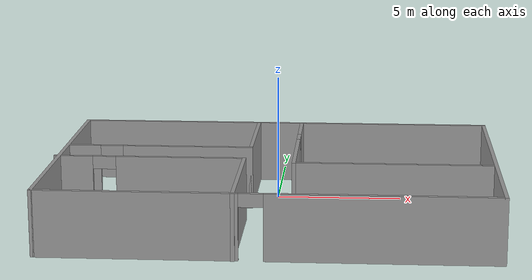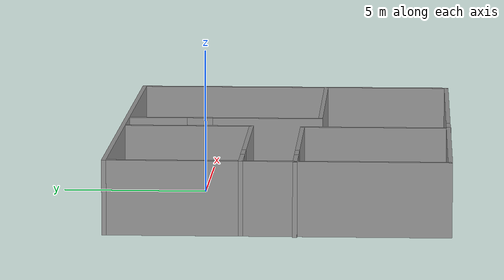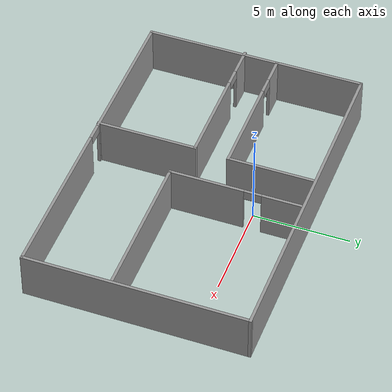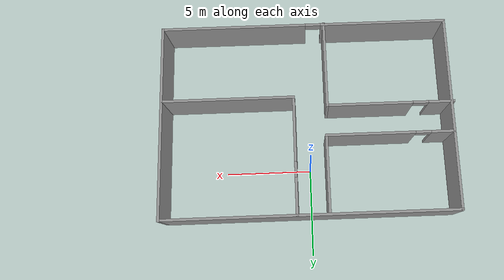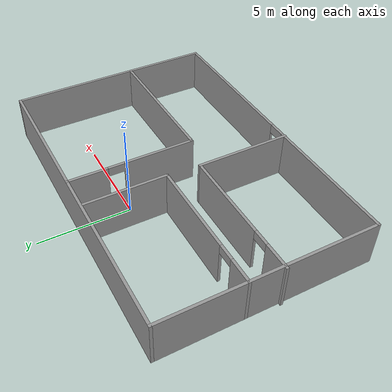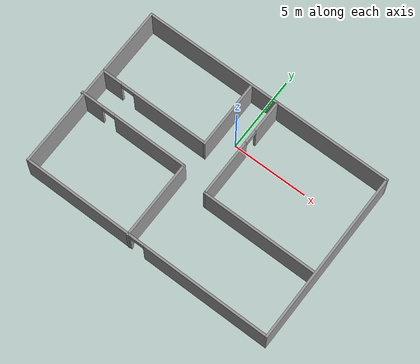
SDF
<?xml version='1.0'?>
<sdf version='1.7'>
  <model name='room'>
    <pose>0.028107 -2.85954 0 0 -0 0</pose>
    <link name='Wall_20'>
      <collision name='Wall_20_Collision'>
        <geometry>
          <box>
            <size>11.5 0.15 2.5</size>
          </box>
        </geometry>
        <pose>0 0 1.25 0 -0 0</pose>
      </collision>
      <visual name='Wall_20_Visual'>
        <pose>0 0 1.25 0 -0 0</pose>
        <geometry>
          <box>
            <size>11.5 0.15 2.5</size>
          </box>
        </geometry>
        <material>
          <script>
            <uri>file://media/materials/scripts/gazebo.material</uri>
            <name>Gazebo/Grey</name>
          </script>
          <ambient>1 1 1 1</ambient>
        </material>
        <meta>
          <layer>0</layer>
        </meta>
      </visual>
      <pose>-8.36347 0.012922 0 0 -0 -1.5708</pose>
    </link>
    <link name='Wall_21'>
      <pose>0.061528 -5.66208 0 0 -0 0</pose>
      <visual name='Wall_21_Visual_0'>
        <pose>-4.74972 0 1.25 0 -0 0</pose>
        <geometry>
          <box>
            <size>7.50057 0.15 2.5</size>
          </box>
        </geometry>
        <material>
          <script>
            <uri>file://media/materials/scripts/gazebo.material</uri>
            <name>Gazebo/Grey</name>
          </script>
          <ambient>1 1 1 1</ambient>
        </material>
        <meta>
          <layer>0</layer>
        </meta>
      </visual>
      <collision name='Wall_21_Collision_0'>
        <geometry>
          <box>
            <size>7.50057 0.15 2.5</size>
          </box>
        </geometry>
        <pose>-4.74972 0 1.25 0 -0 0</pose>
      </collision>
      <visual name='Wall_21_Visual_1'>
        <pose>4.20028 0 1.25 0 -0 0</pose>
        <geometry>
          <box>
            <size>8.59943 0.15 2.5</size>
          </box>
        </geometry>
        <material>
          <script>
            <uri>file://media/materials/scripts/gazebo.material</uri>
            <name>Gazebo/Grey</name>
          </script>
          <ambient>1 1 1 1</ambient>
        </material>
        <meta>
          <layer>0</layer>
        </meta>
      </visual>
      <collision name='Wall_21_Collision_1'>
        <geometry>
          <box>
            <size>8.59943 0.15 2.5</size>
          </box>
        </geometry>
        <pose>4.20028 0 1.25 0 -0 0</pose>
      </collision>
      <visual name='Wall_21_Visual_2'>
        <pose>-0.549432 0 2.25 0 -0 0</pose>
        <geometry>
          <box>
            <size>0.9 0.15 0.5</size>
          </box>
        </geometry>
        <material>
          <script>
            <uri>file://media/materials/scripts/gazebo.material</uri>
            <name>Gazebo/Grey</name>
          </script>
          <ambient>1 1 1 1</ambient>
        </material>
        <meta>
          <layer>0</layer>
        </meta>
      </visual>
      <collision name='Wall_21_Collision_2'>
        <geometry>
          <box>
            <size>0.9 0.15 0.5</size>
          </box>
        </geometry>
        <pose>-0.549432 0 2.25 0 -0 0</pose>
      </collision>
    </link>
    <link name='Wall_22'>
      <collision name='Wall_22_Collision'>
        <geometry>
          <box>
            <size>11.5 0.15 2.5</size>
          </box>
        </geometry>
        <pose>0 0 1.25 0 -0 0</pose>
      </collision>
      <visual name='Wall_22_Visual'>
        <pose>0 0 1.25 0 -0 0</pose>
        <geometry>
          <box>
            <size>11.5 0.15 2.5</size>
          </box>
        </geometry>
        <material>
          <script>
            <uri>file://media/materials/scripts/gazebo.material</uri>
            <name>Gazebo/Grey</name>
          </script>
          <ambient>1 1 1 1</ambient>
        </material>
        <meta>
          <layer>0</layer>
        </meta>
      </visual>
      <pose>8.48653 0.012922 0 0 -0 1.5708</pose>
    </link>
    <link name='Wall_23'>
      <collision name='Wall_23_Collision'>
        <geometry>
          <box>
            <size>17 0.15 2.5</size>
          </box>
        </geometry>
        <pose>0 0 1.25 0 -0 0</pose>
      </collision>
      <visual name='Wall_23_Visual'>
        <pose>0 0 1.25 0 -0 0</pose>
        <geometry>
          <box>
            <size>17 0.15 2.5</size>
          </box>
        </geometry>
        <material>
          <script>
            <uri>file://media/materials/scripts/gazebo.material</uri>
            <name>Gazebo/Grey</name>
          </script>
          <ambient>1 1 1 1</ambient>
        </material>
        <meta>
          <layer>0</layer>
        </meta>
      </visual>
      <pose>0.061528 5.68792 0 0 -0 3.14159</pose>
    </link>
    <link name='Wall_25'>
      <pose>-4.68847 1.19639 0 0 -0 0</pose>
      <visual name='Wall_25_Visual_0'>
        <pose>-3.04535 0 1.25 0 -0 0</pose>
        <geometry>
          <box>
            <size>1.40931 0.15 2.5</size>
          </box>
        </geometry>
        <material>
          <script>
            <uri>file://media/materials/scripts/gazebo.material</uri>
            <name>Gazebo/Grey</name>
          </script>
          <ambient>1 1 1 1</ambient>
        </material>
        <meta>
          <layer>0</layer>
        </meta>
      </visual>
      <collision name='Wall_25_Collision_0'>
        <geometry>
          <box>
            <size>1.40931 0.15 2.5</size>
          </box>
        </geometry>
        <pose>-3.04535 0 1.25 0 -0 0</pose>
      </collision>
      <visual name='Wall_25_Visual_1'>
        <pose>1.15465 0 1.25 0 -0 0</pose>
        <geometry>
          <box>
            <size>5.19069 0.15 2.5</size>
          </box>
        </geometry>
        <material>
          <script>
            <uri>file://media/materials/scripts/gazebo.material</uri>
            <name>Gazebo/Grey</name>
          </script>
          <ambient>1 1 1 1</ambient>
        </material>
        <meta>
          <layer>0</layer>
        </meta>
      </visual>
      <collision name='Wall_25_Collision_1'>
        <geometry>
          <box>
            <size>5.19069 0.15 2.5</size>
          </box>
        </geometry>
        <pose>1.15465 0 1.25 0 -0 0</pose>
      </collision>
      <visual name='Wall_25_Visual_2'>
        <pose>-1.89069 0 2.25 0 -0 0</pose>
        <geometry>
          <box>
            <size>0.9 0.15 0.5</size>
          </box>
        </geometry>
        <material>
          <script>
            <uri>file://media/materials/scripts/gazebo.material</uri>
            <name>Gazebo/Grey</name>
          </script>
          <ambient>1 1 1 1</ambient>
        </material>
        <meta>
          <layer>0</layer>
        </meta>
      </visual>
      <collision name='Wall_25_Collision_2'>
        <geometry>
          <box>
            <size>0.9 0.15 0.5</size>
          </box>
        </geometry>
        <pose>-1.89069 0 2.25 0 -0 0</pose>
      </collision>
    </link>
    <link name='Wall_26'>
      <collision name='Wall_26_Collision'>
        <geometry>
          <box>
            <size>4.5 0.15 2.5</size>
          </box>
        </geometry>
        <pose>0 0 1.25 0 -0 0</pose>
      </collision>
      <visual name='Wall_26_Visual'>
        <pose>0 0 1.25 0 -0 0</pose>
        <geometry>
          <box>
            <size>4.5 0.15 2.5</size>
          </box>
        </geometry>
        <material>
          <script>
            <uri>file://media/materials/scripts/gazebo.material</uri>
            <name>Gazebo/Grey</name>
          </script>
          <ambient>1 1 1 1</ambient>
        </material>
        <meta>
          <layer>0</layer>
        </meta>
      </visual>
      <pose>-1.01347 3.37139 0 0 -0 1.5708</pose>
    </link>
    <link name='Wall_28'>
      <pose>-4.81153 -0.587922 0 0 -0 0</pose>
      <visual name='Wall_28_Visual_0'>
        <pose>-2.98382 0 1.25 0 -0 0</pose>
        <geometry>
          <box>
            <size>1.53236 0.15 2.5</size>
          </box>
        </geometry>
        <material>
          <script>
            <uri>file://media/materials/scripts/gazebo.material</uri>
            <name>Gazebo/Grey</name>
          </script>
          <ambient>1 1 1 1</ambient>
        </material>
        <meta>
          <layer>0</layer>
        </meta>
      </visual>
      <collision name='Wall_28_Collision_0'>
        <geometry>
          <box>
            <size>1.53236 0.15 2.5</size>
          </box>
        </geometry>
        <pose>-2.98382 0 1.25 0 -0 0</pose>
      </collision>
      <visual name='Wall_28_Visual_1'>
        <pose>1.21618 0 1.25 0 -0 0</pose>
        <geometry>
          <box>
            <size>5.06764 0.15 2.5</size>
          </box>
        </geometry>
        <material>
          <script>
            <uri>file://media/materials/scripts/gazebo.material</uri>
            <name>Gazebo/Grey</name>
          </script>
          <ambient>1 1 1 1</ambient>
        </material>
        <meta>
          <layer>0</layer>
        </meta>
      </visual>
      <collision name='Wall_28_Collision_1'>
        <geometry>
          <box>
            <size>5.06764 0.15 2.5</size>
          </box>
        </geometry>
        <pose>1.21618 0 1.25 0 -0 0</pose>
      </collision>
      <visual name='Wall_28_Visual_2'>
        <pose>-1.76764 0 2.25 0 -0 0</pose>
        <geometry>
          <box>
            <size>0.9 0.15 0.5</size>
          </box>
        </geometry>
        <material>
          <script>
            <uri>file://media/materials/scripts/gazebo.material</uri>
            <name>Gazebo/Grey</name>
          </script>
          <ambient>1 1 1 1</ambient>
        </material>
        <meta>
          <layer>0</layer>
        </meta>
      </visual>
      <collision name='Wall_28_Collision_2'>
        <geometry>
          <box>
            <size>0.9 0.15 0.5</size>
          </box>
        </geometry>
        <pose>-1.76764 0 2.25 0 -0 0</pose>
      </collision>
    </link>
    <link name='Wall_29'>
      <collision name='Wall_29_Collision'>
        <geometry>
          <box>
            <size>5.25 0.15 2.5</size>
          </box>
        </geometry>
        <pose>0 0 1.25 0 -0 0</pose>
      </collision>
      <visual name='Wall_29_Visual'>
        <pose>0 0 1.25 0 -0 0</pose>
        <geometry>
          <box>
            <size>5.25 0.15 2.5</size>
          </box>
        </geometry>
        <material>
          <script>
            <uri>file://media/materials/scripts/gazebo.material</uri>
            <name>Gazebo/Grey</name>
          </script>
          <ambient>1 1 1 1</ambient>
        </material>
        <meta>
          <layer>0</layer>
        </meta>
      </visual>
      <pose>-1.13653 -3.13792 0 0 -0 -1.5708</pose>
    </link>
    <link name='Wall_31'>
      <pose>0.804181 2.26292 0 0 -0 -1.5708</pose>
      <visual name='Wall_31_Visual_0'>
        <pose>-2.39541 0 1.25 0 -0 0</pose>
        <geometry>
          <box>
            <size>2.20917 0.15 2.5</size>
          </box>
        </geometry>
        <material>
          <script>
            <uri>file://media/materials/scripts/gazebo.material</uri>
            <name>Gazebo/Grey</name>
          </script>
          <ambient>1 1 1 1</ambient>
        </material>
        <meta>
          <layer>0</layer>
        </meta>
      </visual>
      <collision name='Wall_31_Collision_0'>
        <geometry>
          <box>
            <size>2.20917 0.15 2.5</size>
          </box>
        </geometry>
        <pose>-2.39541 0 1.25 0 -0 0</pose>
      </collision>
      <visual name='Wall_31_Visual_1'>
        <pose>1.55459 0 1.25 0 -0 0</pose>
        <geometry>
          <box>
            <size>3.89083 0.15 2.5</size>
          </box>
        </geometry>
        <material>
          <script>
            <uri>file://media/materials/scripts/gazebo.material</uri>
            <name>Gazebo/Grey</name>
          </script>
          <ambient>1 1 1 1</ambient>
        </material>
        <meta>
          <layer>0</layer>
        </meta>
      </visual>
      <collision name='Wall_31_Collision_1'>
        <geometry>
          <box>
            <size>3.89083 0.15 2.5</size>
          </box>
        </geometry>
        <pose>1.55459 0 1.25 0 -0 0</pose>
      </collision>
      <visual name='Wall_31_Visual_2'>
        <pose>-0.840829 0 2.25 0 -0 0</pose>
        <geometry>
          <box>
            <size>0.9 0.15 0.5</size>
          </box>
        </geometry>
        <material>
          <script>
            <uri>file://media/materials/scripts/gazebo.material</uri>
            <name>Gazebo/Grey</name>
          </script>
          <ambient>1 1 1 1</ambient>
        </material>
        <meta>
          <layer>0</layer>
        </meta>
      </visual>
      <collision name='Wall_31_Collision_2'>
        <geometry>
          <box>
            <size>0.9 0.15 0.5</size>
          </box>
        </geometry>
        <pose>-0.840829 0 2.25 0 -0 0</pose>
      </collision>
    </link>
    <link name='Wall_32'>
      <collision name='Wall_32_Collision'>
        <geometry>
          <box>
            <size>7.75 0.15 2.5</size>
          </box>
        </geometry>
        <pose>0 0 1.25 0 -0 0</pose>
      </collision>
      <visual name='Wall_32_Visual'>
        <pose>0 0 1.25 0 -0 0</pose>
        <geometry>
          <box>
            <size>7.75 0.15 2.5</size>
          </box>
        </geometry>
        <material>
          <script>
            <uri>file://media/materials/scripts/gazebo.material</uri>
            <name>Gazebo/Grey</name>
          </script>
          <ambient>1 1 1 1</ambient>
        </material>
        <meta>
          <layer>0</layer>
        </meta>
      </visual>
      <pose>4.60418 -1.16208 0 0 -0 0</pose>
    </link>
    <static>1</static>
  </model>
</sdf>
